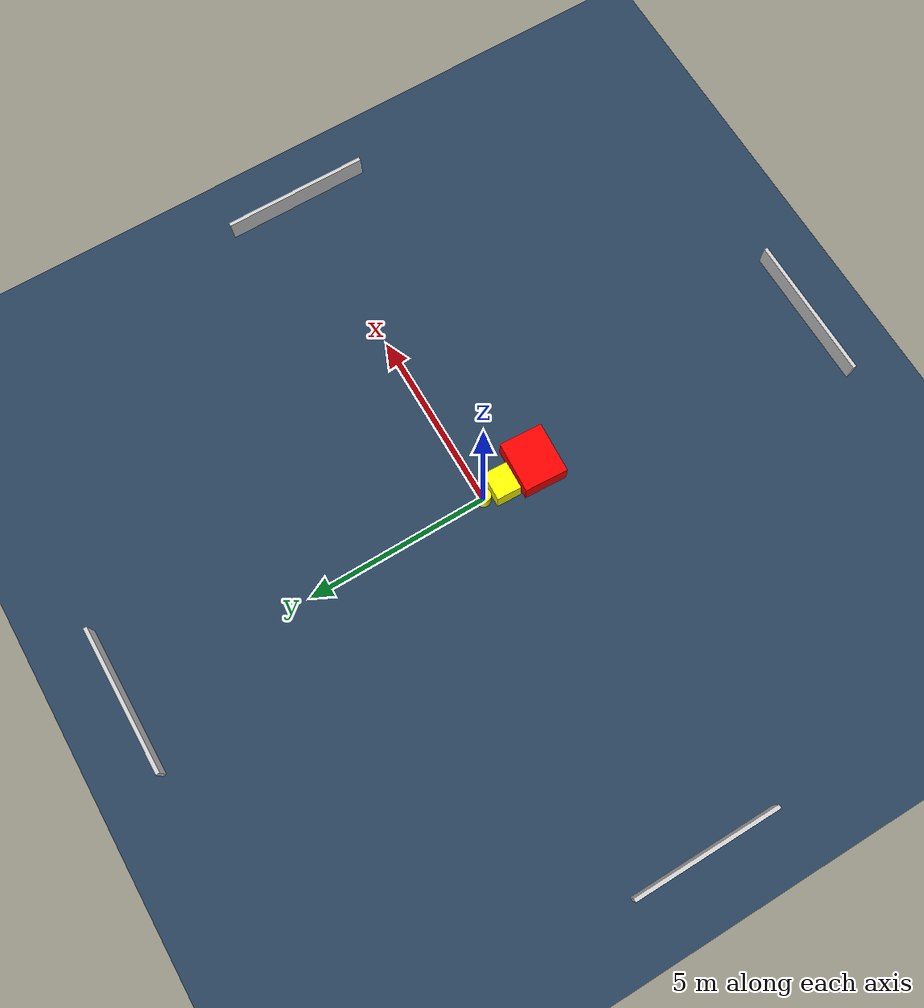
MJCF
<?xml version="1.0" ?>
<mujoco model="generated_environment">
  <option timestep="0.01" integrator="RK4" cone="elliptic"/>
  <default>
    <geom density="1"/>
  </default>
  <asset>
    <texture builtin="gradient" height="3072" name="skybox" rgb1="0.3 0.5 0.7" rgb2="0 0 0" type="skybox" width="512"/>
    <texture builtin="checker" height="300" name="groundplane" rgb1="0.2 0.3 0.4" rgb2="0.1 0.2 0.3" type="2d" width="300"/>
    <material name="groundplane" reflectance="0.2" texrepeat="5 5" texture="groundplane"/>
  </asset>
  <worldbody>
    <light dir="0 0 -1" directional="true" pos="0 0 1.5"/>
    <geom condim="3" friction="0.5 0.005 0.001" material="groundplane" name="floor" pos="0 0 0" size="0 0 0.05" type="plane"/>
    <body name="walls">
      <geom name="wall_1" condim="4" pos="-10.0 0.0 0.3" rgba="0.800000011920929 0.800000011920929 0.800000011920929 1.0" size="0.05 2.0 0.3" type="box"/>
      <geom name="wall_2" condim="4" pos="10.0 0.0 0.3" rgba="0.800000011920929 0.800000011920929 0.800000011920929 1.0" size="0.05 2.0 0.3" type="box"/>
      <geom name="wall_3" condim="4" pos="0.0 -10.0 0.3" rgba="0.800000011920929 0.800000011920929 0.800000011920929 1.0" size="2.0 0.05 0.3" type="box"/>
      <geom name="wall_4" condim="4" pos="0.0 10.0 0.3" rgba="0.800000011920929 0.800000011920929 0.800000011920929 1.0" size="2.0 0.05 0.3" type="box"/>
    </body>
    <body name="robot">
      <joint name="joint_x" type="slide" pos="0 0 0" axis="1 0 0"/>
      <joint name="joint_y" type="slide" pos="0 0 0" axis="0 1 0"/>
      <geom name="robot" type="cylinder" pos="0.0 0.0 0.2" size="0.2 0.2 0.0" mass="5.0" friction="1.0 0.005 0.0001" condim="4" rgba="1.0 1.0 0.0 1.0"/>
    </body>
    <body name="obstacle_1_movable">
      <geom name="obstacle_1_movable" condim="4" pos="0.031495359023865535 -0.5638515060991032 0.3" euler="0 0 177.77326079611143" friction="0.0 0.005 0.001" rgba="1.0 1.0 0.0 1.0" size="0.38345489912830855 0.3349126577761048 0.3" type="box" mass="0.1"/>
      <joint type="free"/>
    </body>
    <body name="obstacle_2_static">
      <geom name="obstacle_2_static" condim="4" pos="0.15880590312535495 -1.5663510712768298 0.3" euler="0 0 267.1217082063313" friction="0.0 0.005 0.001" rgba="1.0 0.0 0.0 1.0" size="0.5917882322910202 0.6981110343873513 0.3" type="box"/>
    </body>
  </worldbody>
  <actuator>
    <motor name="actuator_x" joint="joint_x" gear="1" ctrlrange="-1 1"/>
    <motor name="actuator_y" joint="joint_y" gear="1" ctrlrange="-1 1"/>
  </actuator>
</mujoco>
